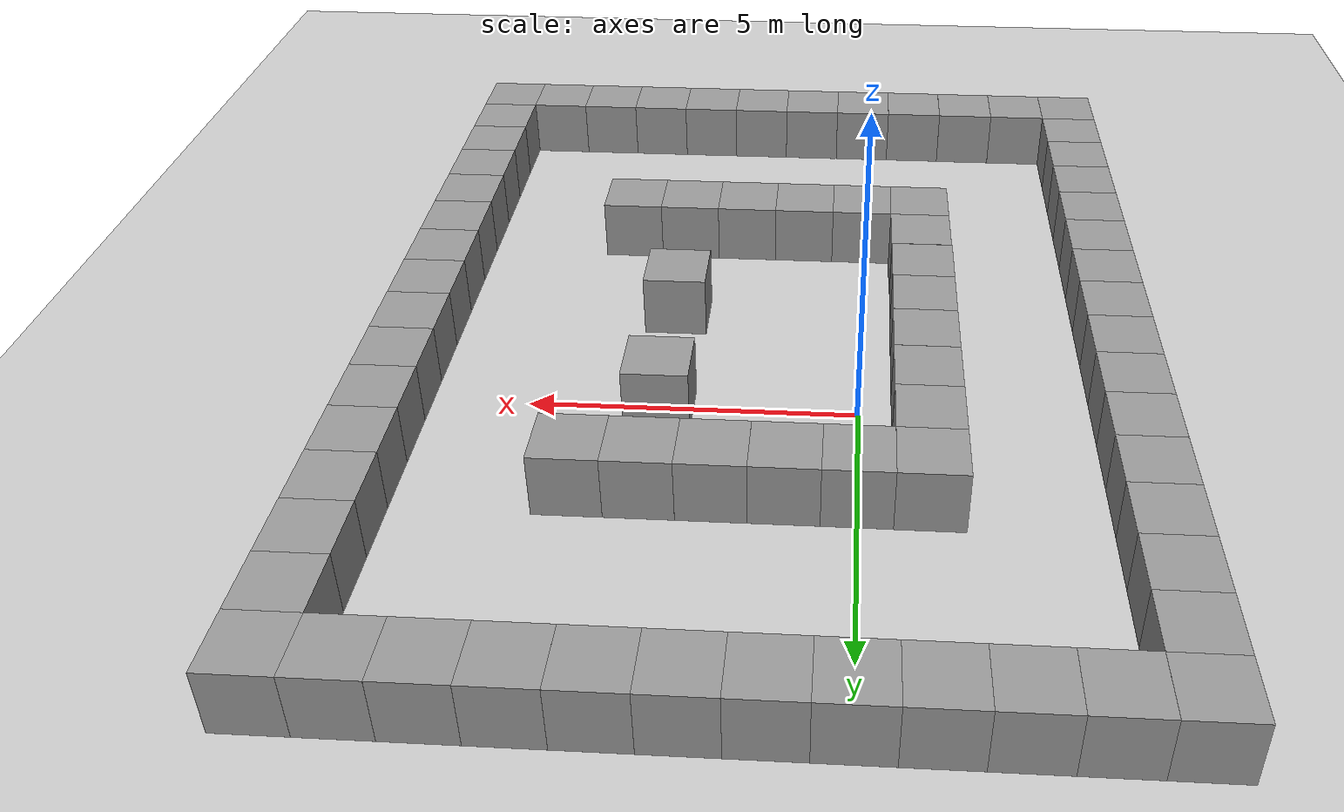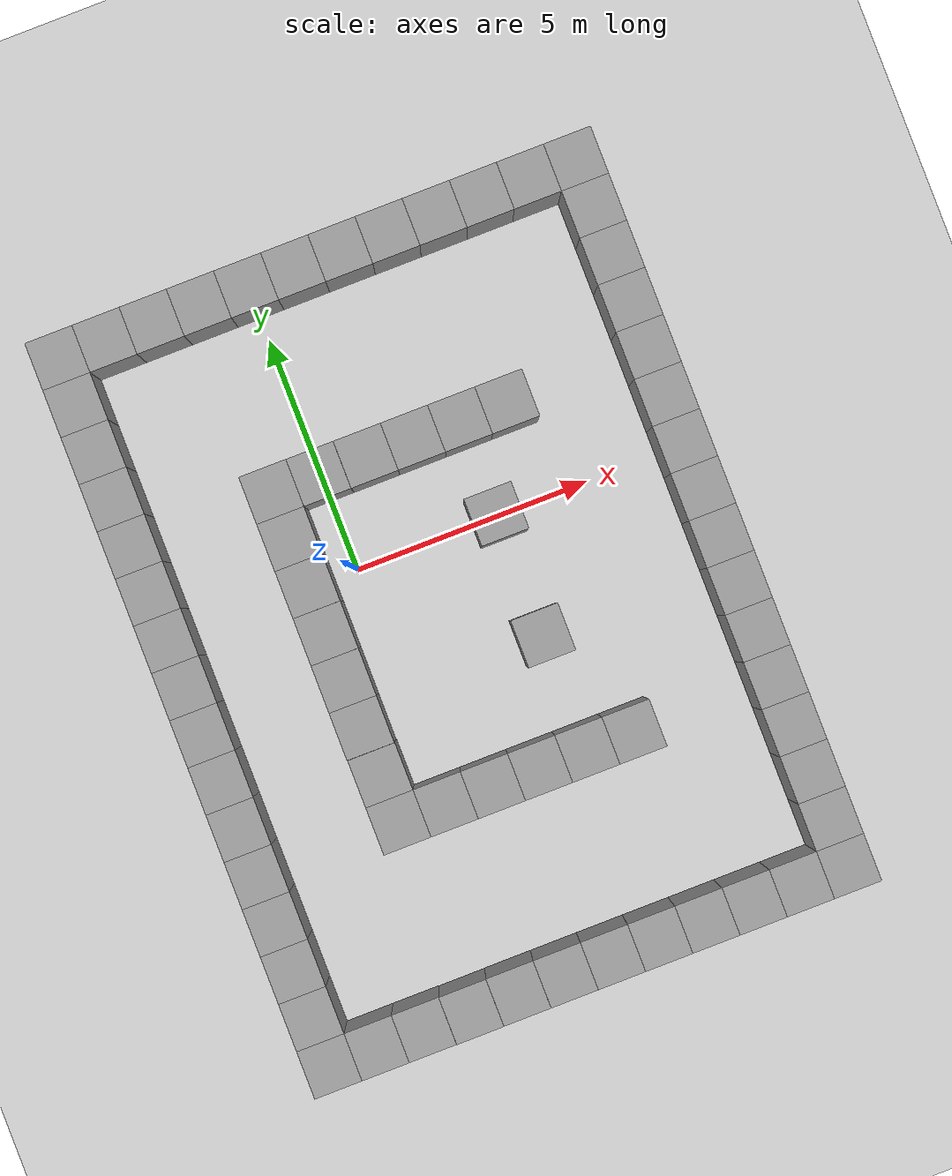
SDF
<sdf version="1.4">
 <world name="default">
  <model name="ground_plane">
   <static>1</static>
   <link name="link">
    <collision name="collision">
     <geometry><plane><normal>0 0 1</normal><size>100 100</size></plane></geometry>
     <surface><friction><ode><mu>100</mu><mu2>50</mu2></ode></friction></surface>
    </collision>
    <visual name="visual">
     <cast_shadows>0</cast_shadows>
     <geometry><plane><normal>0 0 1</normal><size>100 100</size></plane></geometry>
     <material>
      <script><uri>file://media/materials/scripts/gazebo.material</uri><name>Gazebo/Grey</name></script>
     </material>
    </visual>
    <velocity_decay><linear>0</linear><angular>0</angular></velocity_decay>
   </link>
  </model>
  <light name="sun" type="directional">
   <pose>0 0 10 0 -0 0</pose>
   <diffuse>0.8 0.8 0.8 1</diffuse>
   <specular>0.2 0.2 0.2 1</specular>
   <attenuation>
    <range>1000</range>
    <constant>0.9</constant>
    <linear>0.01</linear>
    <quadratic>0.001</quadratic>
   </attenuation>
   <direction>-0.5 0.1 -0.9</direction>
  </light>
  <physics type="ode">
   <max_step_size>0.001</max_step_size>
   <real_time_factor>1</real_time_factor>
   <real_time_update_rate>1000</real_time_update_rate>
   <gravity>0 0 -9.8</gravity>
  </physics>
  <scene><ambient>0.4 0.4 0.4 1</ambient><background>0.7 0.7 0.7 1</background><shadows>1</shadows></scene>
  <model name="unit_box_2">
   <pose>-0.000115 2.00102 0.5 0 0 -0.000798</pose>
   <link name="link">
    <inertial>
     <mass>1</mass>
     <inertia><ixx>1</ixx><ixy>0</ixy><ixz>0</ixz><iyy>1</iyy><iyz>0</iyz><izz>1</izz></inertia>
    </inertial>
    <collision name="collision"><geometry><box><size>1 1 1</size></box></geometry></collision>
    <visual name="visual">
     <geometry><box><size>1 1 1</size></box></geometry>
     <material>
      <script><uri>file://media/materials/scripts/gazebo.material</uri><name>Gazebo/Grey</name></script>
     </material>
    </visual>
    <velocity_decay><linear>0</linear><angular>0</angular></velocity_decay>
   </link>
   <static>0</static>
  </model>
  <model name="unit_box_3">
   <pose>1.00012 2.00038 0.5 -0 -0 -0.000336</pose>
   <link name="link">
    <inertial>
     <mass>1</mass>
     <inertia><ixx>1</ixx><ixy>0</ixy><ixz>0</ixz><iyy>1</iyy><iyz>0</iyz><izz>1</izz></inertia>
    </inertial>
    <collision name="collision"><geometry><box><size>1 1 1</size></box></geometry></collision>
    <visual name="visual">
     <geometry><box><size>1 1 1</size></box></geometry>
     <material>
      <script><uri>file://media/materials/scripts/gazebo.material</uri><name>Gazebo/Grey</name></script>
     </material>
    </visual>
    <velocity_decay><linear>0</linear><angular>0</angular></velocity_decay>
   </link>
   <static>0</static>
  </model>
  <model name="unit_box_4">
   <pose>2.00022 2.00014 0.5 0 -0 -0.000122</pose>
   <link name="link">
    <inertial>
     <mass>1</mass>
     <inertia><ixx>1</ixx><ixy>0</ixy><ixz>0</ixz><iyy>1</iyy><iyz>0</iyz><izz>1</izz></inertia>
    </inertial>
    <collision name="collision"><geometry><box><size>1 1 1</size></box></geometry></collision>
    <visual name="visual">
     <geometry><box><size>1 1 1</size></box></geometry>
     <material>
      <script><uri>file://media/materials/scripts/gazebo.material</uri><name>Gazebo/Grey</name></script>
     </material>
    </visual>
    <velocity_decay><linear>0</linear><angular>0</angular></velocity_decay>
   </link>
   <static>0</static>
  </model>
  <model name="unit_box_5">
   <pose>3.00023 2.00005 0.5 0 0 -0.000105</pose>
   <link name="link">
    <inertial>
     <mass>1</mass>
     <inertia><ixx>1</ixx><ixy>0</ixy><ixz>0</ixz><iyy>1</iyy><iyz>0</iyz><izz>1</izz></inertia>
    </inertial>
    <collision name="collision"><geometry><box><size>1 1 1</size></box></geometry></collision>
    <visual name="visual">
     <geometry><box><size>1 1 1</size></box></geometry>
     <material>
      <script><uri>file://media/materials/scripts/gazebo.material</uri><name>Gazebo/Grey</name></script>
     </material>
    </visual>
    <velocity_decay><linear>0</linear><angular>0</angular></velocity_decay>
   </link>
   <static>0</static>
  </model>
  <model name="unit_box_6">
   <pose>4.00025 2.00002 0.5 0 -0 -7.5e-05</pose>
   <link name="link">
    <inertial>
     <mass>1</mass>
     <inertia><ixx>1</ixx><ixy>0</ixy><ixz>0</ixz><iyy>1</iyy><iyz>0</iyz><izz>1</izz></inertia>
    </inertial>
    <collision name="collision"><geometry><box><size>1 1 1</size></box></geometry></collision>
    <visual name="visual">
     <geometry><box><size>1 1 1</size></box></geometry>
     <material>
      <script><uri>file://media/materials/scripts/gazebo.material</uri><name>Gazebo/Grey</name></script>
     </material>
    </visual>
    <velocity_decay><linear>0</linear><angular>0</angular></velocity_decay>
   </link>
   <static>0</static>
  </model>
  <model name="unit_box_9">
   <pose>7.00029 2.00001 0.5 0 0 -2e-06</pose>
   <link name="link">
    <inertial>
     <mass>1</mass>
     <inertia><ixx>1</ixx><ixy>0</ixy><ixz>0</ixz><iyy>1</iyy><iyz>0</iyz><izz>1</izz></inertia>
    </inertial>
    <collision name="collision"><geometry><box><size>1 1 1</size></box></geometry></collision>
    <visual name="visual">
     <geometry><box><size>1 1 1</size></box></geometry>
     <material>
      <script><uri>file://media/materials/scripts/gazebo.material</uri><name>Gazebo/Grey</name></script>
     </material>
    </visual>
    <velocity_decay><linear>0</linear><angular>0</angular></velocity_decay>
   </link>
   <static>0</static>
  </model>
  <model name="unit_box_10">
   <pose>7.00004 1.00001 0.5 0 0 -2e-06</pose>
   <link name="link">
    <inertial>
     <mass>1</mass>
     <inertia><ixx>1</ixx><ixy>0</ixy><ixz>0</ixz><iyy>1</iyy><iyz>0</iyz><izz>1</izz></inertia>
    </inertial>
    <collision name="collision"><geometry><box><size>1 1 1</size></box></geometry></collision>
    <visual name="visual">
     <geometry><box><size>1 1 1</size></box></geometry>
     <material>
      <script><uri>file://media/materials/scripts/gazebo.material</uri><name>Gazebo/Grey</name></script>
     </material>
    </visual>
    <velocity_decay><linear>0</linear><angular>0</angular></velocity_decay>
   </link>
   <static>0</static>
  </model>
  <model name="unit_box_11">
   <pose>7.00001 1.3e-05 0.5 0 0 -1e-06</pose>
   <link name="link">
    <inertial>
     <mass>1</mass>
     <inertia><ixx>1</ixx><ixy>0</ixy><ixz>0</ixz><iyy>1</iyy><iyz>0</iyz><izz>1</izz></inertia>
    </inertial>
    <collision name="collision"><geometry><box><size>1 1 1</size></box></geometry></collision>
    <visual name="visual">
     <geometry><box><size>1 1 1</size></box></geometry>
     <material>
      <script><uri>file://media/materials/scripts/gazebo.material</uri><name>Gazebo/Grey</name></script>
     </material>
    </visual>
    <velocity_decay><linear>0</linear><angular>0</angular></velocity_decay>
   </link>
   <static>0</static>
  </model>
  <model name="unit_box_12">
   <pose>7 -0.99999 0.5 -0 -0 -1e-06</pose>
   <link name="link">
    <inertial>
     <mass>1</mass>
     <inertia><ixx>1</ixx><ixy>0</ixy><ixz>0</ixz><iyy>1</iyy><iyz>0</iyz><izz>1</izz></inertia>
    </inertial>
    <collision name="collision"><geometry><box><size>1 1 1</size></box></geometry></collision>
    <visual name="visual">
     <geometry><box><size>1 1 1</size></box></geometry>
     <material>
      <script><uri>file://media/materials/scripts/gazebo.material</uri><name>Gazebo/Grey</name></script>
     </material>
    </visual>
    <velocity_decay><linear>0</linear><angular>0</angular></velocity_decay>
   </link>
   <static>0</static>
  </model>
  <model name="unit_box_13">
   <pose>7 -1.99999 0.5 0 0 -1e-06</pose>
   <link name="link">
    <inertial>
     <mass>1</mass>
     <inertia><ixx>1</ixx><ixy>0</ixy><ixz>0</ixz><iyy>1</iyy><iyz>0</iyz><izz>1</izz></inertia>
    </inertial>
    <collision name="collision"><geometry><box><size>1 1 1</size></box></geometry></collision>
    <visual name="visual">
     <geometry><box><size>1 1 1</size></box></geometry>
     <material>
      <script><uri>file://media/materials/scripts/gazebo.material</uri><name>Gazebo/Grey</name></script>
     </material>
    </visual>
    <velocity_decay><linear>0</linear><angular>0</angular></velocity_decay>
   </link>
   <static>0</static>
  </model>
  <model name="unit_box_14">
   <pose>6.99999 -2.99999 0.5 0 0 -1e-06</pose>
   <link name="link">
    <inertial>
     <mass>1</mass>
     <inertia><ixx>1</ixx><ixy>0</ixy><ixz>0</ixz><iyy>1</iyy><iyz>0</iyz><izz>1</izz></inertia>
    </inertial>
    <collision name="collision"><geometry><box><size>1 1 1</size></box></geometry></collision>
    <visual name="visual">
     <geometry><box><size>1 1 1</size></box></geometry>
     <material>
      <script><uri>file://media/materials/scripts/gazebo.material</uri><name>Gazebo/Grey</name></script>
     </material>
    </visual>
    <velocity_decay><linear>0</linear><angular>0</angular></velocity_decay>
   </link>
   <static>0</static>
  </model>
  <model name="unit_box_15">
   <pose>6.99999 -3.99999 0.5 0 0 -1e-06</pose>
   <link name="link">
    <inertial>
     <mass>1</mass>
     <inertia><ixx>1</ixx><ixy>0</ixy><ixz>0</ixz><iyy>1</iyy><iyz>0</iyz><izz>1</izz></inertia>
    </inertial>
    <collision name="collision"><geometry><box><size>1 1 1</size></box></geometry></collision>
    <visual name="visual">
     <geometry><box><size>1 1 1</size></box></geometry>
     <material>
      <script><uri>file://media/materials/scripts/gazebo.material</uri><name>Gazebo/Grey</name></script>
     </material>
    </visual>
    <velocity_decay><linear>0</linear><angular>0</angular></velocity_decay>
   </link>
   <static>0</static>
  </model>
  <model name="unit_box_16">
   <pose>-1.00035 2.00509 0.5 0 0 -0.001268</pose>
   <link name="link">
    <inertial>
     <mass>1</mass>
     <inertia><ixx>1</ixx><ixy>0</ixy><ixz>0</ixz><iyy>1</iyy><iyz>0</iyz><izz>1</izz></inertia>
    </inertial>
    <collision name="collision"><geometry><box><size>1 1 1</size></box></geometry></collision>
    <visual name="visual">
     <geometry><box><size>1 1 1</size></box></geometry>
     <material>
      <script><uri>file://media/materials/scripts/gazebo.material</uri><name>Gazebo/Grey</name></script>
     </material>
    </visual>
    <velocity_decay><linear>0</linear><angular>0</angular></velocity_decay>
   </link>
   <static>0</static>
  </model>
  <model name="unit_box_18">
   <pose>-1.0013 1.00495 0.5 -0 -0 -0.001554</pose>
   <link name="link">
    <inertial>
     <mass>1</mass>
     <inertia><ixx>1</ixx><ixy>0</ixy><ixz>0</ixz><iyy>1</iyy><iyz>0</iyz><izz>1</izz></inertia>
    </inertial>
    <collision name="collision"><geometry><box><size>1 1 1</size></box></geometry></collision>
    <visual name="visual">
     <geometry><box><size>1 1 1</size></box></geometry>
     <material>
      <script><uri>file://media/materials/scripts/gazebo.material</uri><name>Gazebo/Grey</name></script>
     </material>
    </visual>
    <velocity_decay><linear>0</linear><angular>0</angular></velocity_decay>
   </link>
   <static>0</static>
  </model>
  <model name="unit_box_19">
   <pose>-1.00021 0.004744 0.5 -0 -0 -0.001928</pose>
   <link name="link">
    <inertial>
     <mass>1</mass>
     <inertia><ixx>1</ixx><ixy>0</ixy><ixz>0</ixz><iyy>1</iyy><iyz>0</iyz><izz>1</izz></inertia>
    </inertial>
    <collision name="collision"><geometry><box><size>1 1 1</size></box></geometry></collision>
    <visual name="visual">
     <geometry><box><size>1 1 1</size></box></geometry>
     <material>
      <script><uri>file://media/materials/scripts/gazebo.material</uri><name>Gazebo/Grey</name></script>
     </material>
    </visual>
    <velocity_decay><linear>0</linear><angular>0</angular></velocity_decay>
   </link>
   <static>0</static>
  </model>
  <model name="unit_box_20">
   <pose>-1.0011 -0.995814 0.5 0 -0 -0.003016</pose>
   <link name="link">
    <inertial>
     <mass>1</mass>
     <inertia><ixx>1</ixx><ixy>0</ixy><ixz>0</ixz><iyy>1</iyy><iyz>0</iyz><izz>1</izz></inertia>
    </inertial>
    <collision name="collision"><geometry><box><size>1 1 1</size></box></geometry></collision>
    <visual name="visual">
     <geometry><box><size>1 1 1</size></box></geometry>
     <material>
      <script><uri>file://media/materials/scripts/gazebo.material</uri><name>Gazebo/Grey</name></script>
     </material>
    </visual>
    <velocity_decay><linear>0</linear><angular>0</angular></velocity_decay>
   </link>
   <static>0</static>
  </model>
  <model name="unit_box_21">
   <pose>-1.00401 -1.99611 0.5 0 0 -0.003584</pose>
   <link name="link">
    <inertial>
     <mass>1</mass>
     <inertia><ixx>1</ixx><ixy>0</ixy><ixz>0</ixz><iyy>1</iyy><iyz>0</iyz><izz>1</izz></inertia>
    </inertial>
    <collision name="collision"><geometry><box><size>1 1 1</size></box></geometry></collision>
    <visual name="visual">
     <geometry><box><size>1 1 1</size></box></geometry>
     <material>
      <script><uri>file://media/materials/scripts/gazebo.material</uri><name>Gazebo/Grey</name></script>
     </material>
    </visual>
    <velocity_decay><linear>0</linear><angular>0</angular></velocity_decay>
   </link>
   <static>0</static>
  </model>
  <model name="unit_box_22">
   <pose>-1.00782 -2.99619 0.5 0 0 -0.003616</pose>
   <link name="link">
    <inertial>
     <mass>1</mass>
     <inertia><ixx>1</ixx><ixy>0</ixy><ixz>0</ixz><iyy>1</iyy><iyz>0</iyz><izz>1</izz></inertia>
    </inertial>
    <collision name="collision"><geometry><box><size>1 1 1</size></box></geometry></collision>
    <visual name="visual">
     <geometry><box><size>1 1 1</size></box></geometry>
     <material>
      <script><uri>file://media/materials/scripts/gazebo.material</uri><name>Gazebo/Grey</name></script>
     </material>
    </visual>
    <velocity_decay><linear>0</linear><angular>0</angular></velocity_decay>
   </link>
   <static>0</static>
  </model>
  <model name="unit_box_28">
   <pose>-1.00002 -9.00536 0.5 0 -0 0.000914</pose>
   <link name="link">
    <inertial>
     <mass>1</mass>
     <inertia><ixx>1</ixx><ixy>0</ixy><ixz>0</ixz><iyy>1</iyy><iyz>0</iyz><izz>1</izz></inertia>
    </inertial>
    <collision name="collision"><geometry><box><size>1 1 1</size></box></geometry></collision>
    <visual name="visual">
     <geometry><box><size>1 1 1</size></box></geometry>
     <material>
      <script><uri>file://media/materials/scripts/gazebo.material</uri><name>Gazebo/Grey</name></script>
     </material>
    </visual>
    <velocity_decay><linear>0</linear><angular>0</angular></velocity_decay>
   </link>
   <static>0</static>
  </model>
  <model name="unit_box_29">
   <pose>7.4e-05 -9.00073 0.5 0 -0 0.000771</pose>
   <link name="link">
    <inertial>
     <mass>1</mass>
     <inertia><ixx>1</ixx><ixy>0</ixy><ixz>0</ixz><iyy>1</iyy><iyz>0</iyz><izz>1</izz></inertia>
    </inertial>
    <collision name="collision"><geometry><box><size>1 1 1</size></box></geometry></collision>
    <visual name="visual">
     <geometry><box><size>1 1 1</size></box></geometry>
     <material>
      <script><uri>file://media/materials/scripts/gazebo.material</uri><name>Gazebo/Grey</name></script>
     </material>
    </visual>
    <velocity_decay><linear>0</linear><angular>0</angular></velocity_decay>
   </link>
   <static>0</static>
  </model>
  <model name="unit_box_30">
   <pose>1.00033 -9.00016 0.5 0 -0 0.000269</pose>
   <link name="link">
    <inertial>
     <mass>1</mass>
     <inertia><ixx>1</ixx><ixy>0</ixy><ixz>0</ixz><iyy>1</iyy><iyz>0</iyz><izz>1</izz></inertia>
    </inertial>
    <collision name="collision"><geometry><box><size>1 1 1</size></box></geometry></collision>
    <visual name="visual">
     <geometry><box><size>1 1 1</size></box></geometry>
     <material>
      <script><uri>file://media/materials/scripts/gazebo.material</uri><name>Gazebo/Grey</name></script>
     </material>
    </visual>
    <velocity_decay><linear>0</linear><angular>0</angular></velocity_decay>
   </link>
   <static>0</static>
  </model>
  <model name="unit_box_31">
   <pose>2.00039 -9.00013 0.5 0 -0 0.000139</pose>
   <link name="link">
    <inertial>
     <mass>1</mass>
     <inertia><ixx>1</ixx><ixy>0</ixy><ixz>0</ixz><iyy>1</iyy><iyz>0</iyz><izz>1</izz></inertia>
    </inertial>
    <collision name="collision"><geometry><box><size>1 1 1</size></box></geometry></collision>
    <visual name="visual">
     <geometry><box><size>1 1 1</size></box></geometry>
     <material>
      <script><uri>file://media/materials/scripts/gazebo.material</uri><name>Gazebo/Grey</name></script>
     </material>
    </visual>
    <velocity_decay><linear>0</linear><angular>0</angular></velocity_decay>
   </link>
   <static>0</static>
  </model>
  <model name="unit_box_32">
   <pose>3.00044 -9 0.5 0 -0 6e-05</pose>
   <link name="link">
    <inertial>
     <mass>1</mass>
     <inertia><ixx>1</ixx><ixy>0</ixy><ixz>0</ixz><iyy>1</iyy><iyz>0</iyz><izz>1</izz></inertia>
    </inertial>
    <collision name="collision"><geometry><box><size>1 1 1</size></box></geometry></collision>
    <visual name="visual">
     <geometry><box><size>1 1 1</size></box></geometry>
     <material>
      <script><uri>file://media/materials/scripts/gazebo.material</uri><name>Gazebo/Grey</name></script>
     </material>
    </visual>
    <velocity_decay><linear>0</linear><angular>0</angular></velocity_decay>
   </link>
   <static>0</static>
  </model>
  <model name="unit_box_33">
   <pose>4.00046 -8.99994 0.5 0 -0 2.3e-05</pose>
   <link name="link">
    <inertial>
     <mass>1</mass>
     <inertia><ixx>1</ixx><ixy>0</ixy><ixz>0</ixz><iyy>1</iyy><iyz>0</iyz><izz>1</izz></inertia>
    </inertial>
    <collision name="collision"><geometry><box><size>1 1 1</size></box></geometry></collision>
    <visual name="visual">
     <geometry><box><size>1 1 1</size></box></geometry>
     <material>
      <script><uri>file://media/materials/scripts/gazebo.material</uri><name>Gazebo/Grey</name></script>
     </material>
    </visual>
    <velocity_decay><linear>0</linear><angular>0</angular></velocity_decay>
   </link>
   <static>0</static>
  </model>
  <model name="unit_box_34">
   <pose>5.00046 -8.99997 0.5 0 -0 2.4e-05</pose>
   <link name="link">
    <inertial>
     <mass>1</mass>
     <inertia><ixx>1</ixx><ixy>0</ixy><ixz>0</ixz><iyy>1</iyy><iyz>0</iyz><izz>1</izz></inertia>
    </inertial>
    <collision name="collision"><geometry><box><size>1 1 1</size></box></geometry></collision>
    <visual name="visual">
     <geometry><box><size>1 1 1</size></box></geometry>
     <material>
      <script><uri>file://media/materials/scripts/gazebo.material</uri><name>Gazebo/Grey</name></script>
     </material>
    </visual>
    <velocity_decay><linear>0</linear><angular>0</angular></velocity_decay>
   </link>
   <static>0</static>
  </model>
  <model name="unit_box_35">
   <pose>7 -4.99999 0.5 0 -0 -1e-06</pose>
   <link name="link">
    <inertial>
     <mass>1</mass>
     <inertia><ixx>1</ixx><ixy>0</ixy><ixz>0</ixz><iyy>1</iyy><iyz>0</iyz><izz>1</izz></inertia>
    </inertial>
    <collision name="collision"><geometry><box><size>1 1 1</size></box></geometry></collision>
    <visual name="visual">
     <geometry><box><size>1 1 1</size></box></geometry>
     <material>
      <script><uri>file://media/materials/scripts/gazebo.material</uri><name>Gazebo/Grey</name></script>
     </material>
    </visual>
    <velocity_decay><linear>0</linear><angular>0</angular></velocity_decay>
   </link>
   <static>0</static>
  </model>
  <model name="unit_box_36">
   <pose>7.00003 -5.99999 0.5 0 -0 -1e-06</pose>
   <link name="link">
    <inertial>
     <mass>1</mass>
     <inertia><ixx>1</ixx><ixy>0</ixy><ixz>0</ixz><iyy>1</iyy><iyz>0</iyz><izz>1</izz></inertia>
    </inertial>
    <collision name="collision"><geometry><box><size>1 1 1</size></box></geometry></collision>
    <visual name="visual">
     <geometry><box><size>1 1 1</size></box></geometry>
     <material>
      <script><uri>file://media/materials/scripts/gazebo.material</uri><name>Gazebo/Grey</name></script>
     </material>
    </visual>
    <velocity_decay><linear>0</linear><angular>0</angular></velocity_decay>
   </link>
   <static>0</static>
  </model>
  <model name="unit_box_37">
   <pose>7.00001 -7 0.5 0 -0 -2e-06</pose>
   <link name="link">
    <inertial>
     <mass>1</mass>
     <inertia><ixx>1</ixx><ixy>0</ixy><ixz>0</ixz><iyy>1</iyy><iyz>0</iyz><izz>1</izz></inertia>
    </inertial>
    <collision name="collision"><geometry><box><size>1 1 1</size></box></geometry></collision>
    <visual name="visual">
     <geometry><box><size>1 1 1</size></box></geometry>
     <material>
      <script><uri>file://media/materials/scripts/gazebo.material</uri><name>Gazebo/Grey</name></script>
     </material>
    </visual>
    <velocity_decay><linear>0</linear><angular>0</angular></velocity_decay>
   </link>
   <static>0</static>
  </model>
  <model name="unit_box_38">
   <pose>7.00001 -8 0.5 -0 -0 -2e-06</pose>
   <link name="link">
    <inertial>
     <mass>1</mass>
     <inertia><ixx>1</ixx><ixy>0</ixy><ixz>0</ixz><iyy>1</iyy><iyz>0</iyz><izz>1</izz></inertia>
    </inertial>
    <collision name="collision"><geometry><box><size>1 1 1</size></box></geometry></collision>
    <visual name="visual">
     <geometry><box><size>1 1 1</size></box></geometry>
     <material>
      <script><uri>file://media/materials/scripts/gazebo.material</uri><name>Gazebo/Grey</name></script>
     </material>
    </visual>
    <velocity_decay><linear>0</linear><angular>0</angular></velocity_decay>
   </link>
   <static>0</static>
  </model>
  <model name="unit_box_41">
   <pose>7.00047 -9.00001 0.5 0 -0 2.6e-05</pose>
   <link name="link">
    <inertial>
     <mass>1</mass>
     <inertia><ixx>1</ixx><ixy>0</ixy><ixz>0</ixz><iyy>1</iyy><iyz>0</iyz><izz>1</izz></inertia>
    </inertial>
    <collision name="collision"><geometry><box><size>1 1 1</size></box></geometry></collision>
    <visual name="visual">
     <geometry><box><size>1 1 1</size></box></geometry>
     <material>
      <script><uri>file://media/materials/scripts/gazebo.material</uri><name>Gazebo/Grey</name></script>
     </material>
    </visual>
    <velocity_decay><linear>0</linear><angular>0</angular></velocity_decay>
   </link>
   <static>0</static>
  </model>
  <model name="unit_box_42">
   <pose>6.00047 -9.00001 0.5 0 -0 2.2e-05</pose>
   <link name="link">
    <inertial>
     <mass>1</mass>
     <inertia><ixx>1</ixx><ixy>0</ixy><ixz>0</ixz><iyy>1</iyy><iyz>0</iyz><izz>1</izz></inertia>
    </inertial>
    <collision name="collision"><geometry><box><size>1 1 1</size></box></geometry></collision>
    <visual name="visual">
     <geometry><box><size>1 1 1</size></box></geometry>
     <material>
      <script><uri>file://media/materials/scripts/gazebo.material</uri><name>Gazebo/Grey</name></script>
     </material>
    </visual>
    <velocity_decay><linear>0</linear><angular>0</angular></velocity_decay>
   </link>
   <static>0</static>
  </model>
  <model name="unit_box_48">
   <pose>-1.00002 -3.99985 0.5 0 -0 6e-05</pose>
   <link name="link">
    <inertial>
     <mass>1</mass>
     <inertia><ixx>1</ixx><ixy>0</ixy><ixz>0</ixz><iyy>1</iyy><iyz>0</iyz><izz>1</izz></inertia>
    </inertial>
    <collision name="collision"><geometry><box><size>1 1 1</size></box></geometry></collision>
    <visual name="visual">
     <geometry><box><size>1 1 1</size></box></geometry>
     <material>
      <script><uri>file://media/materials/scripts/gazebo.material</uri><name>Gazebo/Grey</name></script>
     </material>
    </visual>
    <velocity_decay><linear>0</linear><angular>0</angular></velocity_decay>
   </link>
   <static>0</static>
  </model>
  <model name="unit_box_49">
   <pose>-1.00002 -4.99985 0.5 0 -0 5.8e-05</pose>
   <link name="link">
    <inertial>
     <mass>1</mass>
     <inertia><ixx>1</ixx><ixy>0</ixy><ixz>0</ixz><iyy>1</iyy><iyz>0</iyz><izz>1</izz></inertia>
    </inertial>
    <collision name="collision"><geometry><box><size>1 1 1</size></box></geometry></collision>
    <visual name="visual">
     <geometry><box><size>1 1 1</size></box></geometry>
     <material>
      <script><uri>file://media/materials/scripts/gazebo.material</uri><name>Gazebo/Grey</name></script>
     </material>
    </visual>
    <velocity_decay><linear>0</linear><angular>0</angular></velocity_decay>
   </link>
   <static>0</static>
  </model>
  <model name="unit_box_50">
   <pose>6e-06 -5 0.5 0 -0 1e-05</pose>
   <link name="link">
    <inertial>
     <mass>1</mass>
     <inertia><ixx>1</ixx><ixy>0</ixy><ixz>0</ixz><iyy>1</iyy><iyz>0</iyz><izz>1</izz></inertia>
    </inertial>
    <collision name="collision"><geometry><box><size>1 1 1</size></box></geometry></collision>
    <visual name="visual">
     <geometry><box><size>1 1 1</size></box></geometry>
     <material>
      <script><uri>file://media/materials/scripts/gazebo.material</uri><name>Gazebo/Grey</name></script>
     </material>
    </visual>
    <velocity_decay><linear>0</linear><angular>0</angular></velocity_decay>
   </link>
   <static>0</static>
  </model>
  <model name="unit_box_51">
   <pose>1.00001 -5 0.5 0 -0 4e-06</pose>
   <link name="link">
    <inertial>
     <mass>1</mass>
     <inertia><ixx>1</ixx><ixy>0</ixy><ixz>0</ixz><iyy>1</iyy><iyz>0</iyz><izz>1</izz></inertia>
    </inertial>
    <collision name="collision"><geometry><box><size>1 1 1</size></box></geometry></collision>
    <visual name="visual">
     <geometry><box><size>1 1 1</size></box></geometry>
     <material>
      <script><uri>file://media/materials/scripts/gazebo.material</uri><name>Gazebo/Grey</name></script>
     </material>
    </visual>
    <velocity_decay><linear>0</linear><angular>0</angular></velocity_decay>
   </link>
   <static>0</static>
  </model>
  <model name="unit_box_52">
   <pose>2.00001 -5 0.5 0 -0 5e-06</pose>
   <link name="link">
    <inertial>
     <mass>1</mass>
     <inertia><ixx>1</ixx><ixy>0</ixy><ixz>0</ixz><iyy>1</iyy><iyz>0</iyz><izz>1</izz></inertia>
    </inertial>
    <collision name="collision"><geometry><box><size>1 1 1</size></box></geometry></collision>
    <visual name="visual">
     <geometry><box><size>1 1 1</size></box></geometry>
     <material>
      <script><uri>file://media/materials/scripts/gazebo.material</uri><name>Gazebo/Grey</name></script>
     </material>
    </visual>
    <velocity_decay><linear>0</linear><angular>0</angular></velocity_decay>
   </link>
   <static>0</static>
  </model>
  <model name="unit_box_53">
   <pose>3.00001 -5 0.5 0 -0 5e-06</pose>
   <link name="link">
    <inertial>
     <mass>1</mass>
     <inertia><ixx>1</ixx><ixy>0</ixy><ixz>0</ixz><iyy>1</iyy><iyz>0</iyz><izz>1</izz></inertia>
    </inertial>
    <collision name="collision"><geometry><box><size>1 1 1</size></box></geometry></collision>
    <visual name="visual">
     <geometry><box><size>1 1 1</size></box></geometry>
     <material>
      <script><uri>file://media/materials/scripts/gazebo.material</uri><name>Gazebo/Grey</name></script>
     </material>
    </visual>
    <velocity_decay><linear>0</linear><angular>0</angular></velocity_decay>
   </link>
   <static>0</static>
  </model>
  <model name="unit_box_54">
   <pose>4.00001 -5 0.5 0 -0 5e-06</pose>
   <link name="link">
    <inertial>
     <mass>1</mass>
     <inertia><ixx>1</ixx><ixy>0</ixy><ixz>0</ixz><iyy>1</iyy><iyz>0</iyz><izz>1</izz></inertia>
    </inertial>
    <collision name="collision"><geometry><box><size>1 1 1</size></box></geometry></collision>
    <visual name="visual">
     <geometry><box><size>1 1 1</size></box></geometry>
     <material>
      <script><uri>file://media/materials/scripts/gazebo.material</uri><name>Gazebo/Grey</name></script>
     </material>
    </visual>
    <velocity_decay><linear>0</linear><angular>0</angular></velocity_decay>
   </link>
   <static>0</static>
  </model>
  <model name="unit_box_55">
   <pose>3 0 0.5 0 -0 0</pose>
   <link name="link">
    <inertial>
     <mass>1</mass>
     <inertia><ixx>1</ixx><ixy>0</ixy><ixz>0</ixz><iyy>1</iyy><iyz>0</iyz><izz>1</izz></inertia>
    </inertial>
    <collision name="collision"><geometry><box><size>1 1 1</size></box></geometry></collision>
    <visual name="visual">
     <geometry><box><size>1 1 1</size></box></geometry>
     <material>
      <script><uri>file://media/materials/scripts/gazebo.material</uri><name>Gazebo/Grey</name></script>
     </material>
    </visual>
    <velocity_decay><linear>0</linear><angular>0</angular></velocity_decay>
   </link>
   <static>0</static>
  </model>
  <model name="unit_box_56">
   <pose>3 -2.57701 0.5 0 -0 0</pose>
   <link name="link">
    <inertial>
     <mass>1</mass>
     <inertia><ixx>1</ixx><ixy>0</ixy><ixz>0</ixz><iyy>1</iyy><iyz>0</iyz><izz>1</izz></inertia>
    </inertial>
    <collision name="collision"><geometry><box><size>1 1 1</size></box></geometry></collision>
    <visual name="visual">
     <geometry><box><size>1 1 1</size></box></geometry>
     <material>
      <script><uri>file://media/materials/scripts/gazebo.material</uri><name>Gazebo/Grey</name></script>
     </material>
    </visual>
    <velocity_decay><linear>0</linear><angular>0</angular></velocity_decay>
   </link>
   <static>0</static>
  </model>
  <model name="unit_box_57">
   <pose>7 3.00001 0.5 0 -0 -2e-06</pose>
   <link name="link">
    <inertial>
     <mass>1</mass>
     <inertia><ixx>1</ixx><ixy>0</ixy><ixz>0</ixz><iyy>1</iyy><iyz>0</iyz><izz>1</izz></inertia>
    </inertial>
    <collision name="collision"><geometry><box><size>1 1 1</size></box></geometry></collision>
    <visual name="visual">
     <geometry><box><size>1 1 1</size></box></geometry>
     <material>
      <script><uri>file://media/materials/scripts/gazebo.material</uri><name>Gazebo/Grey</name></script>
     </material>
    </visual>
    <velocity_decay><linear>0</linear><angular>0</angular></velocity_decay>
   </link>
   <static>0</static>
  </model>
  <model name="unit_box_58">
   <pose>7.00001 4.00002 0.5 0 0 -2e-06</pose>
   <link name="link">
    <inertial>
     <mass>1</mass>
     <inertia><ixx>1</ixx><ixy>0</ixy><ixz>0</ixz><iyy>1</iyy><iyz>0</iyz><izz>1</izz></inertia>
    </inertial>
    <collision name="collision"><geometry><box><size>1 1 1</size></box></geometry></collision>
    <visual name="visual">
     <geometry><box><size>1 1 1</size></box></geometry>
     <material>
      <script><uri>file://media/materials/scripts/gazebo.material</uri><name>Gazebo/Grey</name></script>
     </material>
    </visual>
    <velocity_decay><linear>0</linear><angular>0</angular></velocity_decay>
   </link>
   <static>0</static>
  </model>
  <model name="unit_box_59">
   <pose>7.00001 5.00002 0.5 0 0 -2e-06</pose>
   <link name="link">
    <inertial>
     <mass>1</mass>
     <inertia><ixx>1</ixx><ixy>0</ixy><ixz>0</ixz><iyy>1</iyy><iyz>0</iyz><izz>1</izz></inertia>
    </inertial>
    <collision name="collision"><geometry><box><size>1 1 1</size></box></geometry></collision>
    <visual name="visual">
     <geometry><box><size>1 1 1</size></box></geometry>
     <material>
      <script><uri>file://media/materials/scripts/gazebo.material</uri><name>Gazebo/Grey</name></script>
     </material>
    </visual>
    <velocity_decay><linear>0</linear><angular>0</angular></velocity_decay>
   </link>
   <static>0</static>
  </model>
  <model name="unit_box_60">
   <pose>7.00001 6.00002 0.5 0 0 -3e-06</pose>
   <link name="link">
    <inertial>
     <mass>1</mass>
     <inertia><ixx>1</ixx><ixy>0</ixy><ixz>0</ixz><iyy>1</iyy><iyz>0</iyz><izz>1</izz></inertia>
    </inertial>
    <collision name="collision"><geometry><box><size>1 1 1</size></box></geometry></collision>
    <visual name="visual">
     <geometry><box><size>1 1 1</size></box></geometry>
     <material>
      <script><uri>file://media/materials/scripts/gazebo.material</uri><name>Gazebo/Grey</name></script>
     </material>
    </visual>
    <velocity_decay><linear>0</linear><angular>0</angular></velocity_decay>
   </link>
   <static>0</static>
  </model>
  <model name="unit_box_61">
   <pose>6.00001 5.99999 0.5 0 0 -6e-06</pose>
   <link name="link">
    <inertial>
     <mass>1</mass>
     <inertia><ixx>1</ixx><ixy>0</ixy><ixz>0</ixz><iyy>1</iyy><iyz>0</iyz><izz>1</izz></inertia>
    </inertial>
    <collision name="collision"><geometry><box><size>1 1 1</size></box></geometry></collision>
    <visual name="visual">
     <geometry><box><size>1 1 1</size></box></geometry>
     <material>
      <script><uri>file://media/materials/scripts/gazebo.material</uri><name>Gazebo/Grey</name></script>
     </material>
    </visual>
    <velocity_decay><linear>0</linear><angular>0</angular></velocity_decay>
   </link>
   <static>0</static>
  </model>
  <model name="unit_box_62">
   <pose>5.00001 5.99999 0.5 -0 -0 -4e-06</pose>
   <link name="link">
    <inertial>
     <mass>1</mass>
     <inertia><ixx>1</ixx><ixy>0</ixy><ixz>0</ixz><iyy>1</iyy><iyz>0</iyz><izz>1</izz></inertia>
    </inertial>
    <collision name="collision"><geometry><box><size>1 1 1</size></box></geometry></collision>
    <visual name="visual">
     <geometry><box><size>1 1 1</size></box></geometry>
     <material>
      <script><uri>file://media/materials/scripts/gazebo.material</uri><name>Gazebo/Grey</name></script>
     </material>
    </visual>
    <velocity_decay><linear>0</linear><angular>0</angular></velocity_decay>
   </link>
   <static>0</static>
  </model>
  <model name="unit_box_63">
   <pose>4.00001 6.00001 0.5 0 -0 -4e-06</pose>
   <link name="link">
    <inertial>
     <mass>1</mass>
     <inertia><ixx>1</ixx><ixy>0</ixy><ixz>0</ixz><iyy>1</iyy><iyz>0</iyz><izz>1</izz></inertia>
    </inertial>
    <collision name="collision"><geometry><box><size>1 1 1</size></box></geometry></collision>
    <visual name="visual">
     <geometry><box><size>1 1 1</size></box></geometry>
     <material>
      <script><uri>file://media/materials/scripts/gazebo.material</uri><name>Gazebo/Grey</name></script>
     </material>
    </visual>
    <velocity_decay><linear>0</linear><angular>0</angular></velocity_decay>
   </link>
   <static>0</static>
  </model>
  <model name="unit_box_64">
   <pose>3 6.00001 0.5 -0 -0 -2e-06</pose>
   <link name="link">
    <inertial>
     <mass>1</mass>
     <inertia><ixx>1</ixx><ixy>0</ixy><ixz>0</ixz><iyy>1</iyy><iyz>0</iyz><izz>1</izz></inertia>
    </inertial>
    <collision name="collision"><geometry><box><size>1 1 1</size></box></geometry></collision>
    <visual name="visual">
     <geometry><box><size>1 1 1</size></box></geometry>
     <material>
      <script><uri>file://media/materials/scripts/gazebo.material</uri><name>Gazebo/Grey</name></script>
     </material>
    </visual>
    <velocity_decay><linear>0</linear><angular>0</angular></velocity_decay>
   </link>
   <static>0</static>
  </model>
  <model name="unit_box_65">
   <pose>2 6 0.5 0 0 -2e-06</pose>
   <link name="link">
    <inertial>
     <mass>1</mass>
     <inertia><ixx>1</ixx><ixy>0</ixy><ixz>0</ixz><iyy>1</iyy><iyz>0</iyz><izz>1</izz></inertia>
    </inertial>
    <collision name="collision"><geometry><box><size>1 1 1</size></box></geometry></collision>
    <visual name="visual">
     <geometry><box><size>1 1 1</size></box></geometry>
     <material>
      <script><uri>file://media/materials/scripts/gazebo.material</uri><name>Gazebo/Grey</name></script>
     </material>
    </visual>
    <velocity_decay><linear>0</linear><angular>0</angular></velocity_decay>
   </link>
   <static>0</static>
  </model>
  <model name="unit_box_66">
   <pose>1 6 0.5 0 -0 -1e-06</pose>
   <link name="link">
    <inertial>
     <mass>1</mass>
     <inertia><ixx>1</ixx><ixy>0</ixy><ixz>0</ixz><iyy>1</iyy><iyz>0</iyz><izz>1</izz></inertia>
    </inertial>
    <collision name="collision"><geometry><box><size>1 1 1</size></box></geometry></collision>
    <visual name="visual">
     <geometry><box><size>1 1 1</size></box></geometry>
     <material>
      <script><uri>file://media/materials/scripts/gazebo.material</uri><name>Gazebo/Grey</name></script>
     </material>
    </visual>
    <velocity_decay><linear>0</linear><angular>0</angular></velocity_decay>
   </link>
   <static>0</static>
  </model>
  <model name="unit_box_67">
   <pose>-1e-06 5.99998 0.5 0 -0 4e-06</pose>
   <link name="link">
    <inertial>
     <mass>1</mass>
     <inertia><ixx>1</ixx><ixy>0</ixy><ixz>0</ixz><iyy>1</iyy><iyz>0</iyz><izz>1</izz></inertia>
    </inertial>
    <collision name="collision"><geometry><box><size>1 1 1</size></box></geometry></collision>
    <visual name="visual">
     <geometry><box><size>1 1 1</size></box></geometry>
     <material>
      <script><uri>file://media/materials/scripts/gazebo.material</uri><name>Gazebo/Grey</name></script>
     </material>
    </visual>
    <velocity_decay><linear>0</linear><angular>0</angular></velocity_decay>
   </link>
   <static>0</static>
  </model>
  <model name="unit_box_68">
   <pose>-1 5.99998 0.5 0 -0 6e-06</pose>
   <link name="link">
    <inertial>
     <mass>1</mass>
     <inertia><ixx>1</ixx><ixy>0</ixy><ixz>0</ixz><iyy>1</iyy><iyz>0</iyz><izz>1</izz></inertia>
    </inertial>
    <collision name="collision"><geometry><box><size>1 1 1</size></box></geometry></collision>
    <visual name="visual">
     <geometry><box><size>1 1 1</size></box></geometry>
     <material>
      <script><uri>file://media/materials/scripts/gazebo.material</uri><name>Gazebo/Grey</name></script>
     </material>
    </visual>
    <velocity_decay><linear>0</linear><angular>0</angular></velocity_decay>
   </link>
   <static>0</static>
  </model>
  <model name="unit_box_69">
   <pose>-2 5.99999 0.5 0 -0 6e-06</pose>
   <link name="link">
    <inertial>
     <mass>1</mass>
     <inertia><ixx>1</ixx><ixy>0</ixy><ixz>0</ixz><iyy>1</iyy><iyz>0</iyz><izz>1</izz></inertia>
    </inertial>
    <collision name="collision"><geometry><box><size>1 1 1</size></box></geometry></collision>
    <visual name="visual">
     <geometry><box><size>1 1 1</size></box></geometry>
     <material>
      <script><uri>file://media/materials/scripts/gazebo.material</uri><name>Gazebo/Grey</name></script>
     </material>
    </visual>
    <velocity_decay><linear>0</linear><angular>0</angular></velocity_decay>
   </link>
   <static>0</static>
  </model>
  <model name="unit_box_70">
   <pose>-3 6 0.5 0 -0 6e-06</pose>
   <link name="link">
    <inertial>
     <mass>1</mass>
     <inertia><ixx>1</ixx><ixy>0</ixy><ixz>0</ixz><iyy>1</iyy><iyz>0</iyz><izz>1</izz></inertia>
    </inertial>
    <collision name="collision"><geometry><box><size>1 1 1</size></box></geometry></collision>
    <visual name="visual">
     <geometry><box><size>1 1 1</size></box></geometry>
     <material>
      <script><uri>file://media/materials/scripts/gazebo.material</uri><name>Gazebo/Grey</name></script>
     </material>
    </visual>
    <velocity_decay><linear>0</linear><angular>0</angular></velocity_decay>
   </link>
   <static>0</static>
  </model>
  <model name="unit_box_71">
   <pose>-4.00001 6.00002 0.5 0 -0 7e-06</pose>
   <link name="link">
    <inertial>
     <mass>1</mass>
     <inertia><ixx>1</ixx><ixy>0</ixy><ixz>0</ixz><iyy>1</iyy><iyz>0</iyz><izz>1</izz></inertia>
    </inertial>
    <collision name="collision"><geometry><box><size>1 1 1</size></box></geometry></collision>
    <visual name="visual">
     <geometry><box><size>1 1 1</size></box></geometry>
     <material>
      <script><uri>file://media/materials/scripts/gazebo.material</uri><name>Gazebo/Grey</name></script>
     </material>
    </visual>
    <velocity_decay><linear>0</linear><angular>0</angular></velocity_decay>
   </link>
   <static>0</static>
  </model>
  <model name="unit_box_72">
   <pose>-4 5.00002 0.5 0 -0 7e-06</pose>
   <link name="link">
    <inertial>
     <mass>1</mass>
     <inertia><ixx>1</ixx><ixy>0</ixy><ixz>0</ixz><iyy>1</iyy><iyz>0</iyz><izz>1</izz></inertia>
    </inertial>
    <collision name="collision"><geometry><box><size>1 1 1</size></box></geometry></collision>
    <visual name="visual">
     <geometry><box><size>1 1 1</size></box></geometry>
     <material>
      <script><uri>file://media/materials/scripts/gazebo.material</uri><name>Gazebo/Grey</name></script>
     </material>
    </visual>
    <velocity_decay><linear>0</linear><angular>0</angular></velocity_decay>
   </link>
   <static>0</static>
  </model>
  <model name="unit_box_73">
   <pose>-4.00001 4.00001 0.5 0 -0 6e-06</pose>
   <link name="link">
    <inertial>
     <mass>1</mass>
     <inertia><ixx>1</ixx><ixy>0</ixy><ixz>0</ixz><iyy>1</iyy><iyz>0</iyz><izz>1</izz></inertia>
    </inertial>
    <collision name="collision"><geometry><box><size>1 1 1</size></box></geometry></collision>
    <visual name="visual">
     <geometry><box><size>1 1 1</size></box></geometry>
     <material>
      <script><uri>file://media/materials/scripts/gazebo.material</uri><name>Gazebo/Grey</name></script>
     </material>
    </visual>
    <velocity_decay><linear>0</linear><angular>0</angular></velocity_decay>
   </link>
   <static>0</static>
  </model>
  <model name="unit_box_74">
   <pose>-4.00001 3.00001 0.5 0 -0 2e-06</pose>
   <link name="link">
    <inertial>
     <mass>1</mass>
     <inertia><ixx>1</ixx><ixy>0</ixy><ixz>0</ixz><iyy>1</iyy><iyz>0</iyz><izz>1</izz></inertia>
    </inertial>
    <collision name="collision"><geometry><box><size>1 1 1</size></box></geometry></collision>
    <visual name="visual">
     <geometry><box><size>1 1 1</size></box></geometry>
     <material>
      <script><uri>file://media/materials/scripts/gazebo.material</uri><name>Gazebo/Grey</name></script>
     </material>
    </visual>
    <velocity_decay><linear>0</linear><angular>0</angular></velocity_decay>
   </link>
   <static>0</static>
  </model>
  <model name="unit_box_75">
   <pose>-4 2.00001 0.5 0 -0 2e-06</pose>
   <link name="link">
    <inertial>
     <mass>1</mass>
     <inertia><ixx>1</ixx><ixy>0</ixy><ixz>0</ixz><iyy>1</iyy><iyz>0</iyz><izz>1</izz></inertia>
    </inertial>
    <collision name="collision"><geometry><box><size>1 1 1</size></box></geometry></collision>
    <visual name="visual">
     <geometry><box><size>1 1 1</size></box></geometry>
     <material>
      <script><uri>file://media/materials/scripts/gazebo.material</uri><name>Gazebo/Grey</name></script>
     </material>
    </visual>
    <velocity_decay><linear>0</linear><angular>0</angular></velocity_decay>
   </link>
   <static>0</static>
  </model>
  <model name="unit_box_76">
   <pose>-4.00002 1.00001 0.5 0 -0 2e-06</pose>
   <link name="link">
    <inertial>
     <mass>1</mass>
     <inertia><ixx>1</ixx><ixy>0</ixy><ixz>0</ixz><iyy>1</iyy><iyz>0</iyz><izz>1</izz></inertia>
    </inertial>
    <collision name="collision"><geometry><box><size>1 1 1</size></box></geometry></collision>
    <visual name="visual">
     <geometry><box><size>1 1 1</size></box></geometry>
     <material>
      <script><uri>file://media/materials/scripts/gazebo.material</uri><name>Gazebo/Grey</name></script>
     </material>
    </visual>
    <velocity_decay><linear>0</linear><angular>0</angular></velocity_decay>
   </link>
   <static>0</static>
  </model>
  <model name="unit_box_77">
   <pose>-4.00001 7e-06 0.5 0 -0 1e-06</pose>
   <link name="link">
    <inertial>
     <mass>1</mass>
     <inertia><ixx>1</ixx><ixy>0</ixy><ixz>0</ixz><iyy>1</iyy><iyz>0</iyz><izz>1</izz></inertia>
    </inertial>
    <collision name="collision"><geometry><box><size>1 1 1</size></box></geometry></collision>
    <visual name="visual">
     <geometry><box><size>1 1 1</size></box></geometry>
     <material>
      <script><uri>file://media/materials/scripts/gazebo.material</uri><name>Gazebo/Grey</name></script>
     </material>
    </visual>
    <velocity_decay><linear>0</linear><angular>0</angular></velocity_decay>
   </link>
   <static>0</static>
  </model>
  <model name="unit_box_78">
   <pose>-4.00001 -0.999993 0.5 0 -0 1e-06</pose>
   <link name="link">
    <inertial>
     <mass>1</mass>
     <inertia><ixx>1</ixx><ixy>0</ixy><ixz>0</ixz><iyy>1</iyy><iyz>0</iyz><izz>1</izz></inertia>
    </inertial>
    <collision name="collision"><geometry><box><size>1 1 1</size></box></geometry></collision>
    <visual name="visual">
     <geometry><box><size>1 1 1</size></box></geometry>
     <material>
      <script><uri>file://media/materials/scripts/gazebo.material</uri><name>Gazebo/Grey</name></script>
     </material>
    </visual>
    <velocity_decay><linear>0</linear><angular>0</angular></velocity_decay>
   </link>
   <static>0</static>
  </model>
  <model name="unit_box_79">
   <pose>-3.99999 -1.99999 0.5 0 -0 1e-06</pose>
   <link name="link">
    <inertial>
     <mass>1</mass>
     <inertia><ixx>1</ixx><ixy>0</ixy><ixz>0</ixz><iyy>1</iyy><iyz>0</iyz><izz>1</izz></inertia>
    </inertial>
    <collision name="collision"><geometry><box><size>1 1 1</size></box></geometry></collision>
    <visual name="visual">
     <geometry><box><size>1 1 1</size></box></geometry>
     <material>
      <script><uri>file://media/materials/scripts/gazebo.material</uri><name>Gazebo/Grey</name></script>
     </material>
    </visual>
    <velocity_decay><linear>0</linear><angular>0</angular></velocity_decay>
   </link>
   <static>0</static>
  </model>
  <model name="unit_box_80">
   <pose>-3.99998 -3 0.5 0 -0 2e-06</pose>
   <link name="link">
    <inertial>
     <mass>1</mass>
     <inertia><ixx>1</ixx><ixy>0</ixy><ixz>0</ixz><iyy>1</iyy><iyz>0</iyz><izz>1</izz></inertia>
    </inertial>
    <collision name="collision"><geometry><box><size>1 1 1</size></box></geometry></collision>
    <visual name="visual">
     <geometry><box><size>1 1 1</size></box></geometry>
     <material>
      <script><uri>file://media/materials/scripts/gazebo.material</uri><name>Gazebo/Grey</name></script>
     </material>
    </visual>
    <velocity_decay><linear>0</linear><angular>0</angular></velocity_decay>
   </link>
   <static>0</static>
  </model>
  <model name="unit_box_81">
   <pose>-3.99997 -4 0.5 0 -0 2e-06</pose>
   <link name="link">
    <inertial>
     <mass>1</mass>
     <inertia><ixx>1</ixx><ixy>0</ixy><ixz>0</ixz><iyy>1</iyy><iyz>0</iyz><izz>1</izz></inertia>
    </inertial>
    <collision name="collision"><geometry><box><size>1 1 1</size></box></geometry></collision>
    <visual name="visual">
     <geometry><box><size>1 1 1</size></box></geometry>
     <material>
      <script><uri>file://media/materials/scripts/gazebo.material</uri><name>Gazebo/Grey</name></script>
     </material>
    </visual>
    <velocity_decay><linear>0</linear><angular>0</angular></velocity_decay>
   </link>
   <static>0</static>
  </model>
  <model name="unit_box_82">
   <pose>-3.99999 -5 0.5 0 -0 4e-06</pose>
   <link name="link">
    <inertial>
     <mass>1</mass>
     <inertia><ixx>1</ixx><ixy>0</ixy><ixz>0</ixz><iyy>1</iyy><iyz>0</iyz><izz>1</izz></inertia>
    </inertial>
    <collision name="collision"><geometry><box><size>1 1 1</size></box></geometry></collision>
    <visual name="visual">
     <geometry><box><size>1 1 1</size></box></geometry>
     <material>
      <script><uri>file://media/materials/scripts/gazebo.material</uri><name>Gazebo/Grey</name></script>
     </material>
    </visual>
    <velocity_decay><linear>0</linear><angular>0</angular></velocity_decay>
   </link>
   <static>0</static>
  </model>
  <model name="unit_box_83">
   <pose>-4 -6 0.5 0 -0 4e-06</pose>
   <link name="link">
    <inertial>
     <mass>1</mass>
     <inertia><ixx>1</ixx><ixy>0</ixy><ixz>0</ixz><iyy>1</iyy><iyz>0</iyz><izz>1</izz></inertia>
    </inertial>
    <collision name="collision"><geometry><box><size>1 1 1</size></box></geometry></collision>
    <visual name="visual">
     <geometry><box><size>1 1 1</size></box></geometry>
     <material>
      <script><uri>file://media/materials/scripts/gazebo.material</uri><name>Gazebo/Grey</name></script>
     </material>
    </visual>
    <velocity_decay><linear>0</linear><angular>0</angular></velocity_decay>
   </link>
   <static>0</static>
  </model>
  <model name="unit_box_84">
   <pose>-4.00002 -7 0.5 0 -0 4e-06</pose>
   <link name="link">
    <inertial>
     <mass>1</mass>
     <inertia><ixx>1</ixx><ixy>0</ixy><ixz>0</ixz><iyy>1</iyy><iyz>0</iyz><izz>1</izz></inertia>
    </inertial>
    <collision name="collision"><geometry><box><size>1 1 1</size></box></geometry></collision>
    <visual name="visual">
     <geometry><box><size>1 1 1</size></box></geometry>
     <material>
      <script><uri>file://media/materials/scripts/gazebo.material</uri><name>Gazebo/Grey</name></script>
     </material>
    </visual>
    <velocity_decay><linear>0</linear><angular>0</angular></velocity_decay>
   </link>
   <static>0</static>
  </model>
  <model name="unit_box_85">
   <pose>-4.00004 -8 0.5 0 -0 4e-06</pose>
   <link name="link">
    <inertial>
     <mass>1</mass>
     <inertia><ixx>1</ixx><ixy>0</ixy><ixz>0</ixz><iyy>1</iyy><iyz>0</iyz><izz>1</izz></inertia>
    </inertial>
    <collision name="collision"><geometry><box><size>1 1 1</size></box></geometry></collision>
    <visual name="visual">
     <geometry><box><size>1 1 1</size></box></geometry>
     <material>
      <script><uri>file://media/materials/scripts/gazebo.material</uri><name>Gazebo/Grey</name></script>
     </material>
    </visual>
    <velocity_decay><linear>0</linear><angular>0</angular></velocity_decay>
   </link>
   <static>0</static>
  </model>
  <model name="unit_box_86">
   <pose>-4.00045 -9.00005 0.5 0 -0 0.00011</pose>
   <link name="link">
    <inertial>
     <mass>1</mass>
     <inertia><ixx>1</ixx><ixy>0</ixy><ixz>0</ixz><iyy>1</iyy><iyz>0</iyz><izz>1</izz></inertia>
    </inertial>
    <collision name="collision"><geometry><box><size>1 1 1</size></box></geometry></collision>
    <visual name="visual">
     <geometry><box><size>1 1 1</size></box></geometry>
     <material>
      <script><uri>file://media/materials/scripts/gazebo.material</uri><name>Gazebo/Grey</name></script>
     </material>
    </visual>
    <velocity_decay><linear>0</linear><angular>0</angular></velocity_decay>
   </link>
   <static>0</static>
  </model>
  <model name="unit_box_87">
   <pose>-3.00044 -9.00007 0.5 0 -0 0.000137</pose>
   <link name="link">
    <inertial>
     <mass>1</mass>
     <inertia><ixx>1</ixx><ixy>0</ixy><ixz>0</ixz><iyy>1</iyy><iyz>0</iyz><izz>1</izz></inertia>
    </inertial>
    <collision name="collision"><geometry><box><size>1 1 1</size></box></geometry></collision>
    <visual name="visual">
     <geometry><box><size>1 1 1</size></box></geometry>
     <material>
      <script><uri>file://media/materials/scripts/gazebo.material</uri><name>Gazebo/Grey</name></script>
     </material>
    </visual>
    <velocity_decay><linear>0</linear><angular>0</angular></velocity_decay>
   </link>
   <static>0</static>
  </model>
  <model name="unit_box_88">
   <pose>-2.00041 -8.99997 0.5 0 -0 0.000178</pose>
   <link name="link">
    <inertial>
     <mass>1</mass>
     <inertia><ixx>1</ixx><ixy>0</ixy><ixz>0</ixz><iyy>1</iyy><iyz>0</iyz><izz>1</izz></inertia>
    </inertial>
    <collision name="collision"><geometry><box><size>1 1 1</size></box></geometry></collision>
    <visual name="visual">
     <geometry><box><size>1 1 1</size></box></geometry>
     <material>
      <script><uri>file://media/materials/scripts/gazebo.material</uri><name>Gazebo/Grey</name></script>
     </material>
    </visual>
    <velocity_decay><linear>0</linear><angular>0</angular></velocity_decay>
   </link>
   <static>0</static>
  </model>
 </world>
</sdf>
